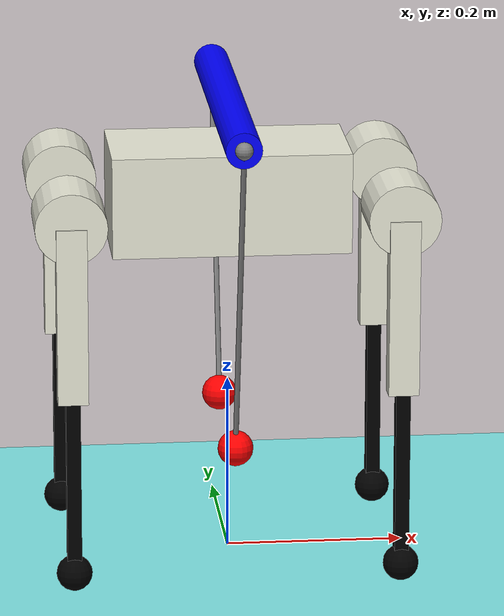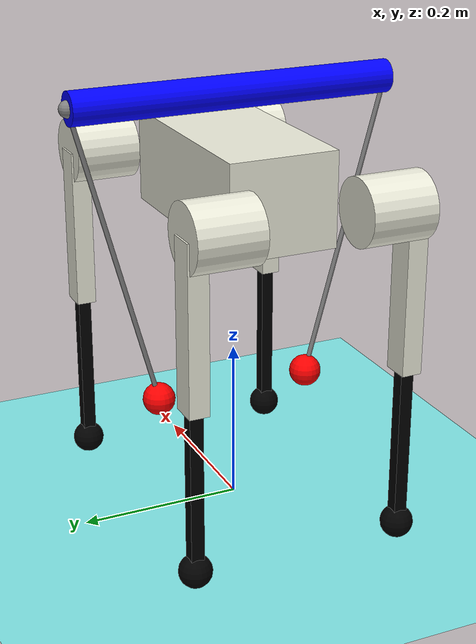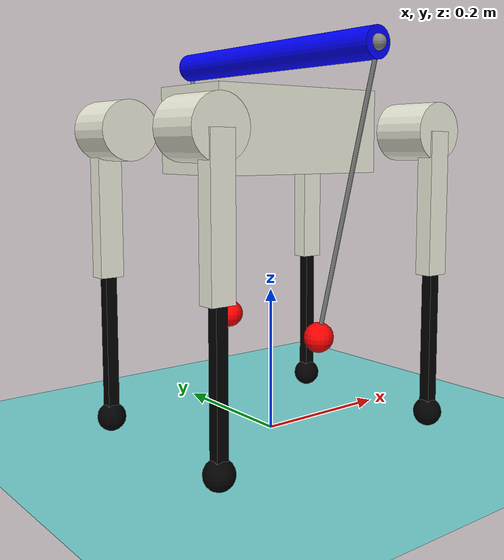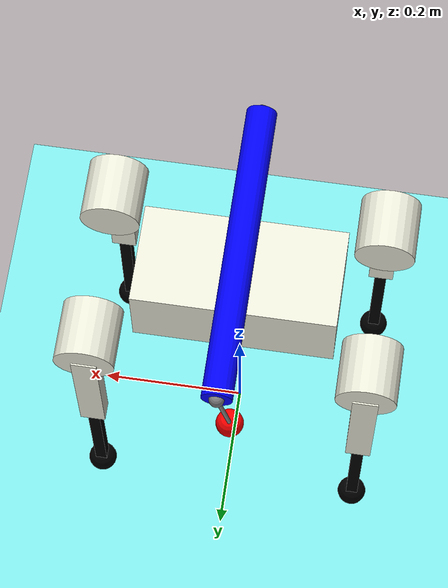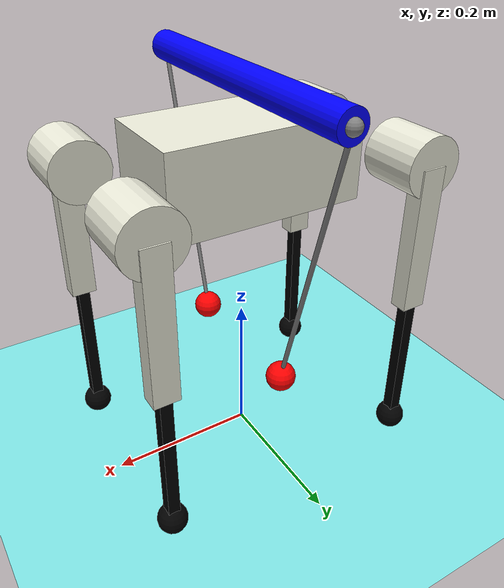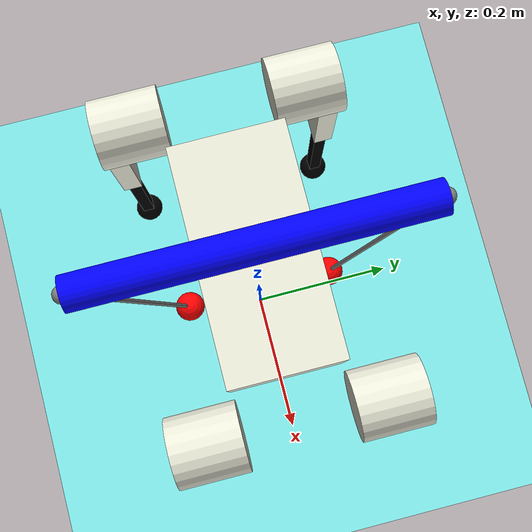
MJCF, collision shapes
<mujoco model="a1_description">
    <compiler angle="radian" meshdir="../meshes/" />
    <size njmax="500" nconmax="100" />
    <option gravity='0 0 -9.806' iterations='50' solver='Newton' timestep='0.002'/>

    <default>
        <geom contype="1" conaffinity="1" friction="1 0.3 0.3" rgba="0.5 0.6 0.7 1" margin="0.001" group="0"/>

        <light castshadow="false" diffuse="1 1 1"/>
        <motor ctrlrange="-33.5 33.5" ctrllimited="true"/>
        <camera fovy="60"/>
        <joint damping="0.00" armature="0.0" frictionloss="0.0" />

    </default>

    <asset>
        <mesh name="trunk" file="trunk.stl" />
        <mesh name="hip" file="hip.stl" />
        <mesh name="thigh_mirror" file="thigh_mirror.stl" />
        <mesh name="calf" file="calf.stl" />
        <mesh name="thigh" file="thigh.stl" />
    </asset>

    <asset>
        <texture type="skybox" builtin="gradient" rgb1="0.3 0.5 0.7" rgb2="0 0 0" width="512" height="3072"/>
        <texture type="2d" name="plane" builtin="checker" mark="edge" rgb1="0.2 0.3 0.4" rgb2="0.1 0.2 0.3"
      markrgb="0.8 0.8 0.8" width="300" height="300"/>
        <material name="plane" reflectance="0.0" texture="plane" texrepeat="3 3"  texuniform="true"/>
    </asset>

    <visual>
        <rgba com="0.502 1.0 0 0.5" contactforce="0.98 0.4 0.4 0.7" contactpoint="1.0 1.0 0.6 0.4"/>
        <scale com="0.2" forcewidth="0.035" contactwidth="0.10" contactheight="0.04"/>
    </visual>

    <worldbody>
        <light directional="true" diffuse=".8 .8 .8" pos="0 0 10" dir="0 0 -10"/>
        <camera name="track" mode="trackcom" pos="0 -1.3 1.6" xyaxes="1 0 0 0 0.707 0.707"/>
        <geom name='floor' type='plane' conaffinity='1' condim='3' contype='1' rgba="0.5 0.9 0.9 0.1" material='plane' pos='0 0 0' size='0 0 1'/>

        <body name="trunk" pos="0 0 0.42">
            <inertial pos="0.0127283 0.00218554 0.000514891" quat="0.00186575 0.711506 0.000389649 0.702677" mass="4.714" diaginertia="0.0648213 0.0565803 0.0169323" />
            <joint type="free" />
            <geom type="mesh" contype="0" conaffinity="0" group="1" rgba="0.913725 0.913725 0.847059 1" mesh="trunk" />
            <geom size="0.1335 0.066 0.057" type="box" rgba="0.913725 0.913725 0.847059 0" />
            <geom size="0.0005 0.0005 0.0005" type="box" contype="0" conaffinity="0" group="1" rgba="0.8 0 0 0" />
            <geom size="0.0005 0.0005 0.0005" type="box" rgba="0.8 0 0 0" />
            <site name="imu" pos="0 0 0"/>

            <body name="horizontal_bar" pos="0 0 0.1">
                <inertial pos="0 0 0" mass="1" diaginertia="0.0268667 0.0268667 0.0004" />
                <geom type="cylinder" size="0.02 0.2" pos="0 0 0" quat="0 0 0.707 0.707" rgba="0 0 1 1"/>
                <site name="end_1" pos="0 0.2 0" size=".01"/>
                <site name="end_2" pos="0 -0.2 0" size=".01"/>
            </body>

            <body name="FR_hip" pos="0.183 -0.047 0">
                <inertial pos="-0.003311 -0.000635 3.1e-05" quat="0.507528 0.506268 0.491507 0.494499" mass="0.696" diaginertia="0.000807752 0.00055293 0.000468983" />
                <joint name="FR_hip_joint" pos="0 0 0" axis="1 0 0" limited="true" range="-0.802851 0.802851" />
                <geom quat="0 1 0 0" type="mesh" contype="0" conaffinity="0" group="1" rgba="0.913725 0.913725 0.847059 1" mesh="hip" />
                <geom size="0.04 0.04" pos="0 -0.055 0" quat="0.707107 0.707107 0 0" type="cylinder" rgba="0.913725 0.913725 0.847059 0" />
                <body name="FR_thigh" pos="0 -0.08505 0">
                    <inertial pos="-0.003237 0.022327 -0.027326" quat="0.999125 -0.00256393 -0.0409531 -0.00806091" mass="1.013" diaginertia="0.00555739 0.00513936 0.00133944" />
                    <joint name="FR_thigh_joint" pos="0 0 0" axis="0 1 0" limited="true" range="-1.0472 4.18879" />
                    <geom type="mesh" contype="0" conaffinity="0" group="1" rgba="0.913725 0.913725 0.847059 1" mesh="thigh_mirror" />
                    <geom size="0.1 0.01225 0.017" pos="0 0 -0.1" quat="0.707107 0 0.707107 0" type="box" rgba="0.913725 0.913725 0.847059 0" />
                    <body name="FR_calf" pos="0 0 -0.2">
                        <inertial pos="0.00472659 0 -0.131975" quat="0.706886 0.017653 0.017653 0.706886" mass="0.226" diaginertia="0.00340344 0.00339393 3.54834e-05" />
                        <joint name="FR_calf_joint" pos="0 0 0" axis="0 1 0" limited="true" range="-2.69653 -0.916298" />
                        <geom type="mesh" contype="0" conaffinity="0" group="1" rgba="0 0 0 1" mesh="calf" />
                        <geom size="0.1 0.008 0.008" pos="0 0 -0.1" quat="0.707107 0 0.707107 0" type="box" rgba="0 0 0 0" />
                        <geom size="0.01" pos="0 0 -0.2" contype="0" conaffinity="0" group="1" rgba="0 0 0 1" />
                        <geom size="0.02" pos="0 0 -0.2" rgba="0 0 0 1" />
                    </body>
                </body>
            </body>
            <body name="FL_hip" pos="0.183 0.047 0">
                <inertial pos="-0.003311 0.000635 3.1e-05" quat="0.494499 0.491507 0.506268 0.507528" mass="0.696" diaginertia="0.000807752 0.00055293 0.000468983" />
                <joint name="FL_hip_joint" pos="0 0 0" axis="1 0 0" limited="true" range="-0.802851 0.802851" />
                <geom type="mesh" contype="0" conaffinity="0" group="1" rgba="0.913725 0.913725 0.847059 1" mesh="hip" />
                <geom size="0.04 0.04" pos="0 0.055 0" quat="0.707107 0.707107 0 0" type="cylinder" rgba="0.913725 0.913725 0.847059 0" />
                <body name="FL_thigh" pos="0 0.08505 0">
                    <inertial pos="-0.003237 -0.022327 -0.027326" quat="0.999125 0.00256393 -0.0409531 0.00806091" mass="1.013" diaginertia="0.00555739 0.00513936 0.00133944" />
                    <joint name="FL_thigh_joint" pos="0 0 0" axis="0 1 0" limited="true" range="-1.0472 4.18879" />
                    <geom type="mesh" contype="0" conaffinity="0" group="1" rgba="0.913725 0.913725 0.847059 1" mesh="thigh" />
                    <geom size="0.1 0.01225 0.017" pos="0 0 -0.1" quat="0.707107 0 0.707107 0" type="box" rgba="0.913725 0.913725 0.847059 0" />
                    <body name="FL_calf" pos="0 0 -0.2">
                        <inertial pos="0.00472659 0 -0.131975" quat="0.706886 0.017653 0.017653 0.706886" mass="0.226" diaginertia="0.00340344 0.00339393 3.54834e-05" />
                        <joint name="FL_calf_joint" pos="0 0 0" axis="0 1 0" limited="true" range="-2.69653 -0.916298" />
                        <geom type="mesh" contype="0" conaffinity="0" group="1" rgba="0 0 0 1" mesh="calf" />
                        <geom size="0.1 0.008 0.008" pos="0 0 -0.1" quat="0.707107 0 0.707107 0" type="box" rgba="0 0 0 0" />
                        <geom size="0.01" pos="0 0 -0.2" contype="0" conaffinity="0" group="1" rgba="0 0 0 1" />
                        <geom size="0.02" pos="0 0 -0.2" rgba="0 0 0 1" />
                    </body>
                </body>
            </body>
            <body name="RR_hip" pos="-0.183 -0.047 0">
                <inertial pos="0.003311 -0.000635 3.1e-05" quat="0.491507 0.494499 0.507528 0.506268" mass="0.696" diaginertia="0.000807752 0.00055293 0.000468983" />
                <joint name="RR_hip_joint" pos="0 0 0" axis="1 0 0" limited="true" range="-0.802851 0.802851" />
                <geom quat="0 0 0 -1" type="mesh" contype="0" conaffinity="0" group="1" rgba="0.913725 0.913725 0.847059 1" mesh="hip" />
                <geom size="0.04 0.04" pos="0 -0.055 0" quat="0.707107 0.707107 0 0" type="cylinder" rgba="0.913725 0.913725 0.847059 0" />
                <body name="RR_thigh" pos="0 -0.08505 0">
                    <inertial pos="-0.003237 0.022327 -0.027326" quat="0.999125 -0.00256393 -0.0409531 -0.00806091" mass="1.013" diaginertia="0.00555739 0.00513936 0.00133944" />
                    <joint name="RR_thigh_joint" pos="0 0 0" axis="0 1 0" limited="true" range="-1.0472 4.18879" />
                    <geom type="mesh" contype="0" conaffinity="0" group="1" rgba="0.913725 0.913725 0.847059 1" mesh="thigh_mirror" />
                    <geom size="0.1 0.01225 0.017" pos="0 0 -0.1" quat="0.707107 0 0.707107 0" type="box" rgba="0.913725 0.913725 0.847059 0" />
                    <body name="RR_calf" pos="0 0 -0.2">
                        <inertial pos="0.00472659 0 -0.131975" quat="0.706886 0.017653 0.017653 0.706886" mass="0.226" diaginertia="0.00340344 0.00339393 3.54834e-05" />
                        <joint name="RR_calf_joint" pos="0 0 0" axis="0 1 0" limited="true" range="-2.69653 -0.916298" />
                        <geom type="mesh" contype="0" conaffinity="0" group="1" rgba="0 0 0 1" mesh="calf" />
                        <geom size="0.1 0.008 0.008" pos="0 0 -0.1" quat="0.707107 0 0.707107 0" type="box" rgba="0 0 0 0" />
                        <geom size="0.01" pos="0 0 -0.2" contype="0" conaffinity="0" group="1" rgba="0 0 0 1" />
                        <geom size="0.02" pos="0 0 -0.2" rgba="0 0 0 1" />
                    </body>
                </body>
            </body>
            <body name="RL_hip" pos="-0.183 0.047 0">
                <inertial pos="0.003311 0.000635 3.1e-05" quat="0.506268 0.507528 0.494499 0.491507" mass="0.696" diaginertia="0.000807752 0.00055293 0.000468983" />
                <joint name="RL_hip_joint" pos="0 0 0" axis="1 0 0" limited="true" range="-0.802851 0.802851" />
                <geom quat="0 0 1 0" type="mesh" contype="0" conaffinity="0" group="1" rgba="0.913725 0.913725 0.847059 1" mesh="hip" />
                <geom size="0.04 0.04" pos="0 0.055 0" quat="0.707107 0.707107 0 0" type="cylinder" rgba="0.913725 0.913725 0.847059 0" />
                <body name="RL_thigh" pos="0 0.08505 0">
                    <inertial pos="-0.003237 -0.022327 -0.027326" quat="0.999125 0.00256393 -0.0409531 0.00806091" mass="1.013" diaginertia="0.00555739 0.00513936 0.00133944" />
                    <joint name="RL_thigh_joint" pos="0 0 0" axis="0 1 0" limited="true" range="-1.0472 4.18879" />
                    <geom type="mesh" contype="0" conaffinity="0" group="1" rgba="0.913725 0.913725 0.847059 1" mesh="thigh" />
                    <geom size="0.1 0.01225 0.017" pos="0 0 -0.1" quat="0.707107 0 0.707107 0" type="box" rgba="0.913725 0.913725 0.847059 0" />
                    <body name="RL_calf" pos="0 0 -0.2">
                        <inertial pos="0.00472659 0 -0.131975" quat="0.706886 0.017653 0.017653 0.706886" mass="0.226" diaginertia="0.00340344 0.00339393 3.54834e-05" />
                        <joint name="RL_calf_joint" pos="0 0 0" axis="0 1 0" limited="true" range="-2.69653 -0.916298" />
                        <geom type="mesh" contype="0" conaffinity="0" group="1" rgba="0 0 0 1" mesh="calf" />
                        <geom size="0.1 0.008 0.008" pos="0 0 -0.1" quat="0.707107 0 0.707107 0" type="box" rgba="0 0 0 0" />
                        <geom size="0.01" pos="0 0 -0.2" contype="0" conaffinity="0" group="1" rgba="0 0 0 1" />
                        <geom size="0.02" pos="0 0 -0.2" rgba="0 0 0 1" />
                    </body>
                </body>
            </body>
        </body>

        <body name="ball1" pos="0 0.1 0.15">
            <joint name="ball_1_free" type="free" />
            <inertial pos="0 0 0" mass="2" diaginertia="0.00026 0.00026 0.00026" />
            <geom type="sphere" size="0.02" rgba="1 0 0 1"/>
            <site name="ball1_hook" pos="0 0 0" size=".01"/>
        </body>
        <body name="ball2" pos="0 -0.1 0.15">
            <joint name="ball_2_free" type="free"/>
            <inertial pos="0 0 0" mass="2" diaginertia="0.00026 0.00026 0.00026" />
            <geom type="sphere" size="0.02" rgba="1 0 0 1"/>
            <site name="ball2_hook" pos="0 0 0" size=".01"/>
        </body>
    </worldbody>

    <tendon>
        <spatial name="wire_1" limited="true" range="0 0.2" width="0.003">
            <site site="end_1"/>
            <site site="ball1_hook"/>
        </spatial>
        <spatial name="wire_2" limited="true" range="0 0.2" width="0.003">
            <site site="end_2"/>
            <site site="ball2_hook"/>
        </spatial>
    </tendon>

    <actuator>

        <motor name="FR_hip"       gear="1" ctrllimited="true" ctrlrange="-20 20" joint="FR_hip_joint"/>
        <motor name="FR_thigh"       gear="1" ctrllimited="true" ctrlrange="-55 55" joint="FR_thigh_joint"/>
        <motor name="FR_calf"       gear="1" ctrllimited="true" ctrlrange="-55 55" joint="FR_calf_joint"/>

        <motor name="FL_hip"     gear="1" ctrllimited="true" ctrlrange="-20 20" joint="FL_hip_joint"/>
        <motor name="FL_thigh"     gear="1" ctrllimited="true" ctrlrange="-55 55" joint="FL_thigh_joint"/>
        <motor name="FL_calf"     gear="1" ctrllimited="true" ctrlrange="-55 55" joint="FL_calf_joint"/>

        <motor name="RR_hip"      gear="1" ctrllimited="true" ctrlrange="-20 20" joint="RR_hip_joint"/>
        <motor name="RR_thigh"   gear="1" ctrllimited="true" ctrlrange="-55 55" joint="RR_thigh_joint"/>
        <motor name="RR_calf"   gear="1" ctrllimited="true" ctrlrange="-55 55" joint="RR_calf_joint" />

        <motor name="RL_hip"      gear="1" ctrllimited="true" ctrlrange="-20 20" joint="RL_hip_joint"/>
        <motor name="RL_thigh"      gear="1" ctrllimited="true" ctrlrange="-55 55" joint="RL_thigh_joint"/>
        <motor name="RL_calf"      gear="1" ctrllimited="true" ctrlrange="-55 55" joint="RL_calf_joint"/>
    </actuator>

    <sensor>
        <jointpos name="FR_hip_pos"     joint="FR_hip_joint"/>
        <jointpos name="FR_thigh_pos"   joint="FR_thigh_joint"/>
        <jointpos name="FR_calf_pos"    joint="FR_calf_joint"/>

        <jointpos name="FL_hip_pos"     joint="FL_hip_joint"/>
        <jointpos name="FL_thigh_pos"   joint="FL_thigh_joint"/>
        <jointpos name="FL_calf_pos"    joint="FL_calf_joint"/>

        <jointpos name="RR_hip_pos"     joint="RR_hip_joint"/>
        <jointpos name="RR_thigh_pos"   joint="RR_thigh_joint"/>
        <jointpos name="RR_calf_pos"    joint="RR_calf_joint" />

        <jointpos name="RL_hip_pos"     joint="RL_hip_joint"/>
        <jointpos name="RL_thigh_pos"   joint="RL_thigh_joint"/>
        <jointpos name="RL_calf_pos"    joint="RL_calf_joint"/>

        <jointvel name="FR_hip_vel"     joint="FR_hip_joint"/>
        <jointvel name="FR_thigh_vel"   joint="FR_thigh_joint"/>
        <jointvel name="FR_calf_vel"    joint="FR_calf_joint"/>

        <jointvel name="FL_hip_vel"     joint="FL_hip_joint"/>
        <jointvel name="FL_thigh_vel"   joint="FL_thigh_joint"/>
        <jointvel name="FL_calf_vel"    joint="FL_calf_joint"/>

        <jointvel name="RR_hip_vel"     joint="RR_hip_joint"/>
        <jointvel name="RR_thigh_vel"   joint="RR_thigh_joint"/>
        <jointvel name="RR_calf_vel"    joint="RR_calf_joint" />

        <jointvel name="RL_hip_vel"     joint="RL_hip_joint"/>
        <jointvel name="RL_thigh_vel"   joint="RL_thigh_joint"/>
        <jointvel name="RL_calf_vel"    joint="RL_calf_joint"/>

        <accelerometer name="Body_Acc" site="imu"/>

        <gyro name="Body_Gyro" site="imu"/>

        <velocimeter name="Body_Vel" site="imu" />

        <framepos name="Body_Pos" objtype="site" objname="imu"/>

        <framequat name="Body_Quat" objtype="site" objname="imu"/>

    </sensor>

</mujoco>
